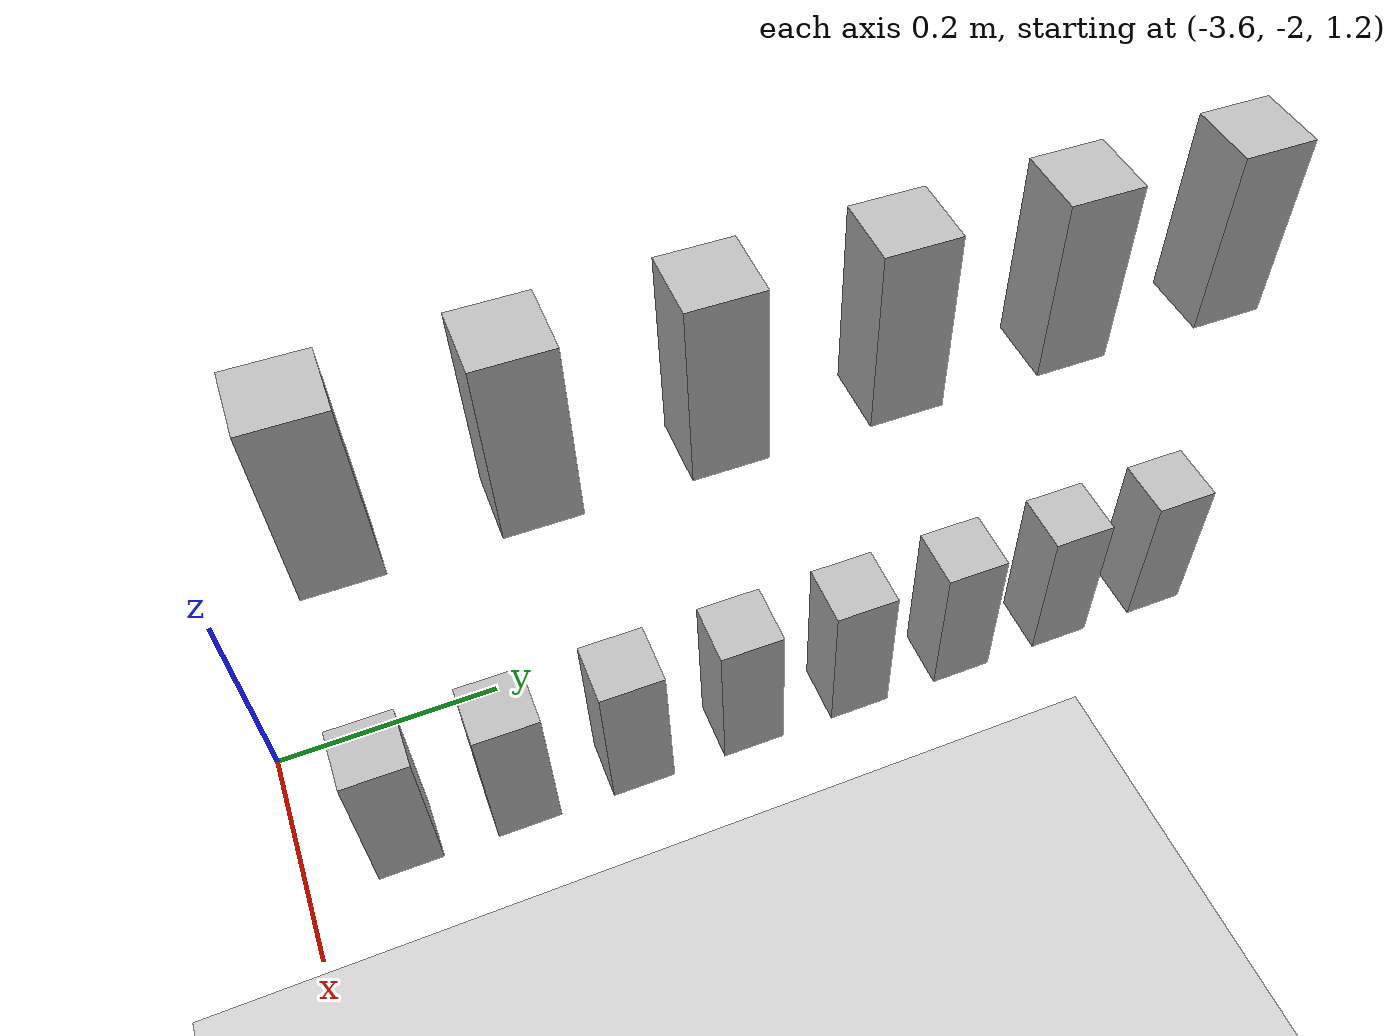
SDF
<sdf version="1.7">
 <world name="default">
  <model name="ground_plane">
   <static>1</static>
   <link name="link">
    <collision name="collision">
     <geometry><plane><normal>0 0 1</normal><size>100 100</size></plane></geometry>
     <surface>
      <contact><collide_bitmask>65535</collide_bitmask></contact>
      <friction><ode><mu>100</mu><mu2>50</mu2></ode></friction>
     </surface>
    </collision>
    <visual name="visual">
     <cast_shadows>0</cast_shadows>
     <geometry><plane><normal>0 0 1</normal><size>100 100</size></plane></geometry>
     <material>
      <script><uri>file://media/materials/scripts/gazebo.material</uri><name>Gazebo/Grey</name></script>
     </material>
    </visual>
   </link>
  </model>
  <model name="AH_shelf_filled">
   <static>1</static>
   <model name="board4">
    <pose>0 0.5 1.2 0 -0 0</pose>
    <static>0</static>
    <link name="AH_hagelslag_puur::link_0">
     <inertial>
      <mass>0.1</mass>
      <inertia><ixx>0.0014</ixx><ixy>0</ixy><ixz>0</ixz><iyy>0.0014</iyy><iyz>0</iyz><izz>0.0028</izz></inertia>
     </inertial>
     <pose>0.111111 0 0 0 -0 1.57</pose>
     <visual name="visual">
      <geometry>
       <mesh><uri>model://AH_hagelslag_puur/AH_hagelslag_puur/AH_hagelslag_puur.dae</uri><scale>1 1 1</scale></mesh>
      </geometry>
     </visual>
     <collision name="collision">
      <geometry>
       <mesh><uri>model://AH_hagelslag_puur/AH_hagelslag_puur/AH_hagelslag_puur.dae</uri><scale>1 1 1</scale></mesh>
      </geometry>
      <surface>
       <friction>
        <ode><mu>1</mu><mu2>1</mu2><fdir1>0 0 0</fdir1><slip1>0</slip1><slip2>0</slip2></ode>
        <torsional>
         <coefficient>1</coefficient>
         <patch_radius>0</patch_radius>
         <surface_radius>0</surface_radius>
         <use_patch_radius>1</use_patch_radius>
         <ode><slip>0</slip></ode>
        </torsional>
       </friction>
       <bounce><restitution_coefficient>0</restitution_coefficient><threshold>1e+06</threshold></bounce>
       <contact>
        <collide_without_contact>0</collide_without_contact>
        <collide_without_contact_bitmask>1</collide_without_contact_bitmask>
        <collide_bitmask>1</collide_bitmask>
        <ode>
         <soft_cfm>0</soft_cfm>
         <soft_erp>0.2</soft_erp>
         <kp>1e+13</kp>
         <kd>1</kd>
         <max_vel>0.01</max_vel>
         <min_depth>0</min_depth>
        </ode>
        <bullet>
         <split_impulse>1</split_impulse>
         <split_impulse_penetration_threshold>-0.01</split_impulse_penetration_threshold>
         <soft_cfm>0</soft_cfm>
         <soft_erp>0.2</soft_erp>
         <kp>1e+13</kp>
         <kd>1</kd>
        </bullet>
       </contact>
      </surface>
     </collision>
    </link>
    <static>0</static>
    <link name="AH_hagelslag_puur::link_0">
     <inertial>
      <mass>0.1</mass>
      <inertia><ixx>0.0014</ixx><ixy>0</ixy><ixz>0</ixz><iyy>0.0014</iyy><iyz>0</iyz><izz>0.0028</izz></inertia>
     </inertial>
     <pose>0.222222 0 0 0 -0 1.57</pose>
     <visual name="visual">
      <geometry>
       <mesh><uri>model://AH_hagelslag_puur/AH_hagelslag_puur/AH_hagelslag_puur.dae</uri><scale>1 1 1</scale></mesh>
      </geometry>
     </visual>
     <collision name="collision">
      <geometry>
       <mesh><uri>model://AH_hagelslag_puur/AH_hagelslag_puur/AH_hagelslag_puur.dae</uri><scale>1 1 1</scale></mesh>
      </geometry>
      <surface>
       <friction>
        <ode><mu>1</mu><mu2>1</mu2><fdir1>0 0 0</fdir1><slip1>0</slip1><slip2>0</slip2></ode>
        <torsional>
         <coefficient>1</coefficient>
         <patch_radius>0</patch_radius>
         <surface_radius>0</surface_radius>
         <use_patch_radius>1</use_patch_radius>
         <ode><slip>0</slip></ode>
        </torsional>
       </friction>
       <bounce><restitution_coefficient>0</restitution_coefficient><threshold>1e+06</threshold></bounce>
       <contact>
        <collide_without_contact>0</collide_without_contact>
        <collide_without_contact_bitmask>1</collide_without_contact_bitmask>
        <collide_bitmask>1</collide_bitmask>
        <ode>
         <soft_cfm>0</soft_cfm>
         <soft_erp>0.2</soft_erp>
         <kp>1e+13</kp>
         <kd>1</kd>
         <max_vel>0.01</max_vel>
         <min_depth>0</min_depth>
        </ode>
        <bullet>
         <split_impulse>1</split_impulse>
         <split_impulse_penetration_threshold>-0.01</split_impulse_penetration_threshold>
         <soft_cfm>0</soft_cfm>
         <soft_erp>0.2</soft_erp>
         <kp>1e+13</kp>
         <kd>1</kd>
        </bullet>
       </contact>
      </surface>
     </collision>
    </link>
    <static>0</static>
    <link name="AH_hagelslag_puur::link_0">
     <inertial>
      <mass>0.1</mass>
      <inertia><ixx>0.0014</ixx><ixy>0</ixy><ixz>0</ixz><iyy>0.0014</iyy><iyz>0</iyz><izz>0.0028</izz></inertia>
     </inertial>
     <pose>0.333333 0 0 0 -0 1.57</pose>
     <visual name="visual">
      <geometry>
       <mesh><uri>model://AH_hagelslag_puur/AH_hagelslag_puur/AH_hagelslag_puur.dae</uri><scale>1 1 1</scale></mesh>
      </geometry>
     </visual>
     <collision name="collision">
      <geometry>
       <mesh><uri>model://AH_hagelslag_puur/AH_hagelslag_puur/AH_hagelslag_puur.dae</uri><scale>1 1 1</scale></mesh>
      </geometry>
      <surface>
       <friction>
        <ode><mu>1</mu><mu2>1</mu2><fdir1>0 0 0</fdir1><slip1>0</slip1><slip2>0</slip2></ode>
        <torsional>
         <coefficient>1</coefficient>
         <patch_radius>0</patch_radius>
         <surface_radius>0</surface_radius>
         <use_patch_radius>1</use_patch_radius>
         <ode><slip>0</slip></ode>
        </torsional>
       </friction>
       <bounce><restitution_coefficient>0</restitution_coefficient><threshold>1e+06</threshold></bounce>
       <contact>
        <collide_without_contact>0</collide_without_contact>
        <collide_without_contact_bitmask>1</collide_without_contact_bitmask>
        <collide_bitmask>1</collide_bitmask>
        <ode>
         <soft_cfm>0</soft_cfm>
         <soft_erp>0.2</soft_erp>
         <kp>1e+13</kp>
         <kd>1</kd>
         <max_vel>0.01</max_vel>
         <min_depth>0</min_depth>
        </ode>
        <bullet>
         <split_impulse>1</split_impulse>
         <split_impulse_penetration_threshold>-0.01</split_impulse_penetration_threshold>
         <soft_cfm>0</soft_cfm>
         <soft_erp>0.2</soft_erp>
         <kp>1e+13</kp>
         <kd>1</kd>
        </bullet>
       </contact>
      </surface>
     </collision>
    </link>
    <static>0</static>
    <link name="AH_hagelslag_puur::link_0">
     <inertial>
      <mass>0.1</mass>
      <inertia><ixx>0.0014</ixx><ixy>0</ixy><ixz>0</ixz><iyy>0.0014</iyy><iyz>0</iyz><izz>0.0028</izz></inertia>
     </inertial>
     <pose>0.444444 0 0 0 -0 1.57</pose>
     <visual name="visual">
      <geometry>
       <mesh><uri>model://AH_hagelslag_puur/AH_hagelslag_puur/AH_hagelslag_puur.dae</uri><scale>1 1 1</scale></mesh>
      </geometry>
     </visual>
     <collision name="collision">
      <geometry>
       <mesh><uri>model://AH_hagelslag_puur/AH_hagelslag_puur/AH_hagelslag_puur.dae</uri><scale>1 1 1</scale></mesh>
      </geometry>
      <surface>
       <friction>
        <ode><mu>1</mu><mu2>1</mu2><fdir1>0 0 0</fdir1><slip1>0</slip1><slip2>0</slip2></ode>
        <torsional>
         <coefficient>1</coefficient>
         <patch_radius>0</patch_radius>
         <surface_radius>0</surface_radius>
         <use_patch_radius>1</use_patch_radius>
         <ode><slip>0</slip></ode>
        </torsional>
       </friction>
       <bounce><restitution_coefficient>0</restitution_coefficient><threshold>1e+06</threshold></bounce>
       <contact>
        <collide_without_contact>0</collide_without_contact>
        <collide_without_contact_bitmask>1</collide_without_contact_bitmask>
        <collide_bitmask>1</collide_bitmask>
        <ode>
         <soft_cfm>0</soft_cfm>
         <soft_erp>0.2</soft_erp>
         <kp>1e+13</kp>
         <kd>1</kd>
         <max_vel>0.01</max_vel>
         <min_depth>0</min_depth>
        </ode>
        <bullet>
         <split_impulse>1</split_impulse>
         <split_impulse_penetration_threshold>-0.01</split_impulse_penetration_threshold>
         <soft_cfm>0</soft_cfm>
         <soft_erp>0.2</soft_erp>
         <kp>1e+13</kp>
         <kd>1</kd>
        </bullet>
       </contact>
      </surface>
     </collision>
    </link>
    <static>0</static>
    <link name="AH_hagelslag_puur::link_0">
     <inertial>
      <mass>0.1</mass>
      <inertia><ixx>0.0014</ixx><ixy>0</ixy><ixz>0</ixz><iyy>0.0014</iyy><iyz>0</iyz><izz>0.0028</izz></inertia>
     </inertial>
     <pose>0.555556 0 0 0 -0 1.57</pose>
     <visual name="visual">
      <geometry>
       <mesh><uri>model://AH_hagelslag_puur/AH_hagelslag_puur/AH_hagelslag_puur.dae</uri><scale>1 1 1</scale></mesh>
      </geometry>
     </visual>
     <collision name="collision">
      <geometry>
       <mesh><uri>model://AH_hagelslag_puur/AH_hagelslag_puur/AH_hagelslag_puur.dae</uri><scale>1 1 1</scale></mesh>
      </geometry>
      <surface>
       <friction>
        <ode><mu>1</mu><mu2>1</mu2><fdir1>0 0 0</fdir1><slip1>0</slip1><slip2>0</slip2></ode>
        <torsional>
         <coefficient>1</coefficient>
         <patch_radius>0</patch_radius>
         <surface_radius>0</surface_radius>
         <use_patch_radius>1</use_patch_radius>
         <ode><slip>0</slip></ode>
        </torsional>
       </friction>
       <bounce><restitution_coefficient>0</restitution_coefficient><threshold>1e+06</threshold></bounce>
       <contact>
        <collide_without_contact>0</collide_without_contact>
        <collide_without_contact_bitmask>1</collide_without_contact_bitmask>
        <collide_bitmask>1</collide_bitmask>
        <ode>
         <soft_cfm>0</soft_cfm>
         <soft_erp>0.2</soft_erp>
         <kp>1e+13</kp>
         <kd>1</kd>
         <max_vel>0.01</max_vel>
         <min_depth>0</min_depth>
        </ode>
        <bullet>
         <split_impulse>1</split_impulse>
         <split_impulse_penetration_threshold>-0.01</split_impulse_penetration_threshold>
         <soft_cfm>0</soft_cfm>
         <soft_erp>0.2</soft_erp>
         <kp>1e+13</kp>
         <kd>1</kd>
        </bullet>
       </contact>
      </surface>
     </collision>
    </link>
    <static>0</static>
    <link name="AH_hagelslag_puur::link_0">
     <inertial>
      <mass>0.1</mass>
      <inertia><ixx>0.0014</ixx><ixy>0</ixy><ixz>0</ixz><iyy>0.0014</iyy><iyz>0</iyz><izz>0.0028</izz></inertia>
     </inertial>
     <pose>0.666667 0 0 0 -0 1.57</pose>
     <visual name="visual">
      <geometry>
       <mesh><uri>model://AH_hagelslag_puur/AH_hagelslag_puur/AH_hagelslag_puur.dae</uri><scale>1 1 1</scale></mesh>
      </geometry>
     </visual>
     <collision name="collision">
      <geometry>
       <mesh><uri>model://AH_hagelslag_puur/AH_hagelslag_puur/AH_hagelslag_puur.dae</uri><scale>1 1 1</scale></mesh>
      </geometry>
      <surface>
       <friction>
        <ode><mu>1</mu><mu2>1</mu2><fdir1>0 0 0</fdir1><slip1>0</slip1><slip2>0</slip2></ode>
        <torsional>
         <coefficient>1</coefficient>
         <patch_radius>0</patch_radius>
         <surface_radius>0</surface_radius>
         <use_patch_radius>1</use_patch_radius>
         <ode><slip>0</slip></ode>
        </torsional>
       </friction>
       <bounce><restitution_coefficient>0</restitution_coefficient><threshold>1e+06</threshold></bounce>
       <contact>
        <collide_without_contact>0</collide_without_contact>
        <collide_without_contact_bitmask>1</collide_without_contact_bitmask>
        <collide_bitmask>1</collide_bitmask>
        <ode>
         <soft_cfm>0</soft_cfm>
         <soft_erp>0.2</soft_erp>
         <kp>1e+13</kp>
         <kd>1</kd>
         <max_vel>0.01</max_vel>
         <min_depth>0</min_depth>
        </ode>
        <bullet>
         <split_impulse>1</split_impulse>
         <split_impulse_penetration_threshold>-0.01</split_impulse_penetration_threshold>
         <soft_cfm>0</soft_cfm>
         <soft_erp>0.2</soft_erp>
         <kp>1e+13</kp>
         <kd>1</kd>
        </bullet>
       </contact>
      </surface>
     </collision>
    </link>
    <static>0</static>
    <link name="AH_hagelslag_puur::link_0">
     <inertial>
      <mass>0.1</mass>
      <inertia><ixx>0.0014</ixx><ixy>0</ixy><ixz>0</ixz><iyy>0.0014</iyy><iyz>0</iyz><izz>0.0028</izz></inertia>
     </inertial>
     <pose>0.777778 0 0 0 -0 1.57</pose>
     <visual name="visual">
      <geometry>
       <mesh><uri>model://AH_hagelslag_puur/AH_hagelslag_puur/AH_hagelslag_puur.dae</uri><scale>1 1 1</scale></mesh>
      </geometry>
     </visual>
     <collision name="collision">
      <geometry>
       <mesh><uri>model://AH_hagelslag_puur/AH_hagelslag_puur/AH_hagelslag_puur.dae</uri><scale>1 1 1</scale></mesh>
      </geometry>
      <surface>
       <friction>
        <ode><mu>1</mu><mu2>1</mu2><fdir1>0 0 0</fdir1><slip1>0</slip1><slip2>0</slip2></ode>
        <torsional>
         <coefficient>1</coefficient>
         <patch_radius>0</patch_radius>
         <surface_radius>0</surface_radius>
         <use_patch_radius>1</use_patch_radius>
         <ode><slip>0</slip></ode>
        </torsional>
       </friction>
       <bounce><restitution_coefficient>0</restitution_coefficient><threshold>1e+06</threshold></bounce>
       <contact>
        <collide_without_contact>0</collide_without_contact>
        <collide_without_contact_bitmask>1</collide_without_contact_bitmask>
        <collide_bitmask>1</collide_bitmask>
        <ode>
         <soft_cfm>0</soft_cfm>
         <soft_erp>0.2</soft_erp>
         <kp>1e+13</kp>
         <kd>1</kd>
         <max_vel>0.01</max_vel>
         <min_depth>0</min_depth>
        </ode>
        <bullet>
         <split_impulse>1</split_impulse>
         <split_impulse_penetration_threshold>-0.01</split_impulse_penetration_threshold>
         <soft_cfm>0</soft_cfm>
         <soft_erp>0.2</soft_erp>
         <kp>1e+13</kp>
         <kd>1</kd>
        </bullet>
       </contact>
      </surface>
     </collision>
    </link>
    <static>0</static>
    <link name="AH_hagelslag_puur::link_0">
     <inertial>
      <mass>0.1</mass>
      <inertia><ixx>0.0014</ixx><ixy>0</ixy><ixz>0</ixz><iyy>0.0014</iyy><iyz>0</iyz><izz>0.0028</izz></inertia>
     </inertial>
     <pose>0.888889 0 0 0 -0 1.57</pose>
     <visual name="visual">
      <geometry>
       <mesh><uri>model://AH_hagelslag_puur/AH_hagelslag_puur/AH_hagelslag_puur.dae</uri><scale>1 1 1</scale></mesh>
      </geometry>
     </visual>
     <collision name="collision">
      <geometry>
       <mesh><uri>model://AH_hagelslag_puur/AH_hagelslag_puur/AH_hagelslag_puur.dae</uri><scale>1 1 1</scale></mesh>
      </geometry>
      <surface>
       <friction>
        <ode><mu>1</mu><mu2>1</mu2><fdir1>0 0 0</fdir1><slip1>0</slip1><slip2>0</slip2></ode>
        <torsional>
         <coefficient>1</coefficient>
         <patch_radius>0</patch_radius>
         <surface_radius>0</surface_radius>
         <use_patch_radius>1</use_patch_radius>
         <ode><slip>0</slip></ode>
        </torsional>
       </friction>
       <bounce><restitution_coefficient>0</restitution_coefficient><threshold>1e+06</threshold></bounce>
       <contact>
        <collide_without_contact>0</collide_without_contact>
        <collide_without_contact_bitmask>1</collide_without_contact_bitmask>
        <collide_bitmask>1</collide_bitmask>
        <ode>
         <soft_cfm>0</soft_cfm>
         <soft_erp>0.2</soft_erp>
         <kp>1e+13</kp>
         <kd>1</kd>
         <max_vel>0.01</max_vel>
         <min_depth>0</min_depth>
        </ode>
        <bullet>
         <split_impulse>1</split_impulse>
         <split_impulse_penetration_threshold>-0.01</split_impulse_penetration_threshold>
         <soft_cfm>0</soft_cfm>
         <soft_erp>0.2</soft_erp>
         <kp>1e+13</kp>
         <kd>1</kd>
        </bullet>
       </contact>
      </surface>
     </collision>
    </link>
   </model>
   <model name="board5">
    <pose>0 0.5 1.6 0 -0 0</pose>
    <static>0</static>
    <link name="AH_hagelslag_melk::link_0">
     <inertial>
      <mass>0.1</mass>
      <inertia><ixx>0.0014</ixx><ixy>0</ixy><ixz>0</ixz><iyy>0.0014</iyy><iyz>0</iyz><izz>0.0028</izz></inertia>
     </inertial>
     <pose>0.142857 0 0 0 -0 1.57</pose>
     <visual name="visual">
      <geometry>
       <mesh><uri>model://AH_hagelslag_melk/AH_hagelslag_melk/AH_hagelslag_melk.dae</uri><scale>1 1 1</scale></mesh>
      </geometry>
     </visual>
     <collision name="collision">
      <geometry>
       <mesh><uri>model://AH_hagelslag_melk/AH_hagelslag_melk/AH_hagelslag_melk.dae</uri><scale>1 1 1</scale></mesh>
      </geometry>
      <surface>
       <friction>
        <ode><mu>1</mu><mu2>1</mu2><fdir1>0 0 0</fdir1><slip1>0</slip1><slip2>0</slip2></ode>
        <torsional>
         <coefficient>1</coefficient>
         <patch_radius>0</patch_radius>
         <surface_radius>0</surface_radius>
         <use_patch_radius>1</use_patch_radius>
         <ode><slip>0</slip></ode>
        </torsional>
       </friction>
       <bounce><restitution_coefficient>0</restitution_coefficient><threshold>1e+06</threshold></bounce>
       <contact>
        <collide_without_contact>0</collide_without_contact>
        <collide_without_contact_bitmask>1</collide_without_contact_bitmask>
        <collide_bitmask>1</collide_bitmask>
        <ode>
         <soft_cfm>0</soft_cfm>
         <soft_erp>0.2</soft_erp>
         <kp>1e+13</kp>
         <kd>1</kd>
         <max_vel>0.01</max_vel>
         <min_depth>0</min_depth>
        </ode>
        <bullet>
         <split_impulse>1</split_impulse>
         <split_impulse_penetration_threshold>-0.01</split_impulse_penetration_threshold>
         <soft_cfm>0</soft_cfm>
         <soft_erp>0.2</soft_erp>
         <kp>1e+13</kp>
         <kd>1</kd>
        </bullet>
       </contact>
      </surface>
     </collision>
    </link>
    <static>0</static>
    <link name="AH_hagelslag_melk::link_0">
     <inertial>
      <mass>0.1</mass>
      <inertia><ixx>0.0014</ixx><ixy>0</ixy><ixz>0</ixz><iyy>0.0014</iyy><iyz>0</iyz><izz>0.0028</izz></inertia>
     </inertial>
     <pose>0.285714 0 0 0 -0 1.57</pose>
     <visual name="visual">
      <geometry>
       <mesh><uri>model://AH_hagelslag_melk/AH_hagelslag_melk/AH_hagelslag_melk.dae</uri><scale>1 1 1</scale></mesh>
      </geometry>
     </visual>
     <collision name="collision">
      <geometry>
       <mesh><uri>model://AH_hagelslag_melk/AH_hagelslag_melk/AH_hagelslag_melk.dae</uri><scale>1 1 1</scale></mesh>
      </geometry>
      <surface>
       <friction>
        <ode><mu>1</mu><mu2>1</mu2><fdir1>0 0 0</fdir1><slip1>0</slip1><slip2>0</slip2></ode>
        <torsional>
         <coefficient>1</coefficient>
         <patch_radius>0</patch_radius>
         <surface_radius>0</surface_radius>
         <use_patch_radius>1</use_patch_radius>
         <ode><slip>0</slip></ode>
        </torsional>
       </friction>
       <bounce><restitution_coefficient>0</restitution_coefficient><threshold>1e+06</threshold></bounce>
       <contact>
        <collide_without_contact>0</collide_without_contact>
        <collide_without_contact_bitmask>1</collide_without_contact_bitmask>
        <collide_bitmask>1</collide_bitmask>
        <ode>
         <soft_cfm>0</soft_cfm>
         <soft_erp>0.2</soft_erp>
         <kp>1e+13</kp>
         <kd>1</kd>
         <max_vel>0.01</max_vel>
         <min_depth>0</min_depth>
        </ode>
        <bullet>
         <split_impulse>1</split_impulse>
         <split_impulse_penetration_threshold>-0.01</split_impulse_penetration_threshold>
         <soft_cfm>0</soft_cfm>
         <soft_erp>0.2</soft_erp>
         <kp>1e+13</kp>
         <kd>1</kd>
        </bullet>
       </contact>
      </surface>
     </collision>
    </link>
    <static>0</static>
    <link name="AH_hagelslag_melk::link_0">
     <inertial>
      <mass>0.1</mass>
      <inertia><ixx>0.0014</ixx><ixy>0</ixy><ixz>0</ixz><iyy>0.0014</iyy><iyz>0</iyz><izz>0.0028</izz></inertia>
     </inertial>
     <pose>0.428571 0 0 0 -0 1.57</pose>
     <visual name="visual">
      <geometry>
       <mesh><uri>model://AH_hagelslag_melk/AH_hagelslag_melk/AH_hagelslag_melk.dae</uri><scale>1 1 1</scale></mesh>
      </geometry>
     </visual>
     <collision name="collision">
      <geometry>
       <mesh><uri>model://AH_hagelslag_melk/AH_hagelslag_melk/AH_hagelslag_melk.dae</uri><scale>1 1 1</scale></mesh>
      </geometry>
      <surface>
       <friction>
        <ode><mu>1</mu><mu2>1</mu2><fdir1>0 0 0</fdir1><slip1>0</slip1><slip2>0</slip2></ode>
        <torsional>
         <coefficient>1</coefficient>
         <patch_radius>0</patch_radius>
         <surface_radius>0</surface_radius>
         <use_patch_radius>1</use_patch_radius>
         <ode><slip>0</slip></ode>
        </torsional>
       </friction>
       <bounce><restitution_coefficient>0</restitution_coefficient><threshold>1e+06</threshold></bounce>
       <contact>
        <collide_without_contact>0</collide_without_contact>
        <collide_without_contact_bitmask>1</collide_without_contact_bitmask>
        <collide_bitmask>1</collide_bitmask>
        <ode>
         <soft_cfm>0</soft_cfm>
         <soft_erp>0.2</soft_erp>
         <kp>1e+13</kp>
         <kd>1</kd>
         <max_vel>0.01</max_vel>
         <min_depth>0</min_depth>
        </ode>
        <bullet>
         <split_impulse>1</split_impulse>
         <split_impulse_penetration_threshold>-0.01</split_impulse_penetration_threshold>
         <soft_cfm>0</soft_cfm>
         <soft_erp>0.2</soft_erp>
         <kp>1e+13</kp>
         <kd>1</kd>
        </bullet>
       </contact>
      </surface>
     </collision>
    </link>
    <static>0</static>
    <link name="AH_hagelslag_melk::link_0">
     <inertial>
      <mass>0.1</mass>
      <inertia><ixx>0.0014</ixx><ixy>0</ixy><ixz>0</ixz><iyy>0.0014</iyy><iyz>0</iyz><izz>0.0028</izz></inertia>
     </inertial>
     <pose>0.571429 0 0 0 -0 1.57</pose>
     <visual name="visual">
      <geometry>
       <mesh><uri>model://AH_hagelslag_melk/AH_hagelslag_melk/AH_hagelslag_melk.dae</uri><scale>1 1 1</scale></mesh>
      </geometry>
     </visual>
     <collision name="collision">
      <geometry>
       <mesh><uri>model://AH_hagelslag_melk/AH_hagelslag_melk/AH_hagelslag_melk.dae</uri><scale>1 1 1</scale></mesh>
      </geometry>
      <surface>
       <friction>
        <ode><mu>1</mu><mu2>1</mu2><fdir1>0 0 0</fdir1><slip1>0</slip1><slip2>0</slip2></ode>
        <torsional>
         <coefficient>1</coefficient>
         <patch_radius>0</patch_radius>
         <surface_radius>0</surface_radius>
         <use_patch_radius>1</use_patch_radius>
         <ode><slip>0</slip></ode>
        </torsional>
       </friction>
       <bounce><restitution_coefficient>0</restitution_coefficient><threshold>1e+06</threshold></bounce>
       <contact>
        <collide_without_contact>0</collide_without_contact>
        <collide_without_contact_bitmask>1</collide_without_contact_bitmask>
        <collide_bitmask>1</collide_bitmask>
        <ode>
         <soft_cfm>0</soft_cfm>
         <soft_erp>0.2</soft_erp>
         <kp>1e+13</kp>
         <kd>1</kd>
         <max_vel>0.01</max_vel>
         <min_depth>0</min_depth>
        </ode>
        <bullet>
         <split_impulse>1</split_impulse>
         <split_impulse_penetration_threshold>-0.01</split_impulse_penetration_threshold>
         <soft_cfm>0</soft_cfm>
         <soft_erp>0.2</soft_erp>
         <kp>1e+13</kp>
         <kd>1</kd>
        </bullet>
       </contact>
      </surface>
     </collision>
    </link>
    <static>0</static>
    <link name="AH_hagelslag_melk::link_0">
     <inertial>
      <mass>0.1</mass>
      <inertia><ixx>0.0014</ixx><ixy>0</ixy><ixz>0</ixz><iyy>0.0014</iyy><iyz>0</iyz><izz>0.0028</izz></inertia>
     </inertial>
     <pose>0.714286 0 0 0 -0 1.57</pose>
     <visual name="visual">
      <geometry>
       <mesh><uri>model://AH_hagelslag_melk/AH_hagelslag_melk/AH_hagelslag_melk.dae</uri><scale>1 1 1</scale></mesh>
      </geometry>
     </visual>
     <collision name="collision">
      <geometry>
       <mesh><uri>model://AH_hagelslag_melk/AH_hagelslag_melk/AH_hagelslag_melk.dae</uri><scale>1 1 1</scale></mesh>
      </geometry>
      <surface>
       <friction>
        <ode><mu>1</mu><mu2>1</mu2><fdir1>0 0 0</fdir1><slip1>0</slip1><slip2>0</slip2></ode>
        <torsional>
         <coefficient>1</coefficient>
         <patch_radius>0</patch_radius>
         <surface_radius>0</surface_radius>
         <use_patch_radius>1</use_patch_radius>
         <ode><slip>0</slip></ode>
        </torsional>
       </friction>
       <bounce><restitution_coefficient>0</restitution_coefficient><threshold>1e+06</threshold></bounce>
       <contact>
        <collide_without_contact>0</collide_without_contact>
        <collide_without_contact_bitmask>1</collide_without_contact_bitmask>
        <collide_bitmask>1</collide_bitmask>
        <ode>
         <soft_cfm>0</soft_cfm>
         <soft_erp>0.2</soft_erp>
         <kp>1e+13</kp>
         <kd>1</kd>
         <max_vel>0.01</max_vel>
         <min_depth>0</min_depth>
        </ode>
        <bullet>
         <split_impulse>1</split_impulse>
         <split_impulse_penetration_threshold>-0.01</split_impulse_penetration_threshold>
         <soft_cfm>0</soft_cfm>
         <soft_erp>0.2</soft_erp>
         <kp>1e+13</kp>
         <kd>1</kd>
        </bullet>
       </contact>
      </surface>
     </collision>
    </link>
    <static>0</static>
    <link name="AH_hagelslag_melk::link_0">
     <inertial>
      <mass>0.1</mass>
      <inertia><ixx>0.0014</ixx><ixy>0</ixy><ixz>0</ixz><iyy>0.0014</iyy><iyz>0</iyz><izz>0.0028</izz></inertia>
     </inertial>
     <pose>0.857143 0 0 0 -0 1.57</pose>
     <visual name="visual">
      <geometry>
       <mesh><uri>model://AH_hagelslag_melk/AH_hagelslag_melk/AH_hagelslag_melk.dae</uri><scale>1 1 1</scale></mesh>
      </geometry>
     </visual>
     <collision name="collision">
      <geometry>
       <mesh><uri>model://AH_hagelslag_melk/AH_hagelslag_melk/AH_hagelslag_melk.dae</uri><scale>1 1 1</scale></mesh>
      </geometry>
      <surface>
       <friction>
        <ode><mu>1</mu><mu2>1</mu2><fdir1>0 0 0</fdir1><slip1>0</slip1><slip2>0</slip2></ode>
        <torsional>
         <coefficient>1</coefficient>
         <patch_radius>0</patch_radius>
         <surface_radius>0</surface_radius>
         <use_patch_radius>1</use_patch_radius>
         <ode><slip>0</slip></ode>
        </torsional>
       </friction>
       <bounce><restitution_coefficient>0</restitution_coefficient><threshold>1e+06</threshold></bounce>
       <contact>
        <collide_without_contact>0</collide_without_contact>
        <collide_without_contact_bitmask>1</collide_without_contact_bitmask>
        <collide_bitmask>1</collide_bitmask>
        <ode>
         <soft_cfm>0</soft_cfm>
         <soft_erp>0.2</soft_erp>
         <kp>1e+13</kp>
         <kd>1</kd>
         <max_vel>0.01</max_vel>
         <min_depth>0</min_depth>
        </ode>
        <bullet>
         <split_impulse>1</split_impulse>
         <split_impulse_penetration_threshold>-0.01</split_impulse_penetration_threshold>
         <soft_cfm>0</soft_cfm>
         <soft_erp>0.2</soft_erp>
         <kp>1e+13</kp>
         <kd>1</kd>
        </bullet>
       </contact>
      </surface>
     </collision>
    </link>
   </model>
   <pose>-4.02831 -1.03085 0 0 0 -1.5708</pose>
  </model>
 </world>
</sdf>
